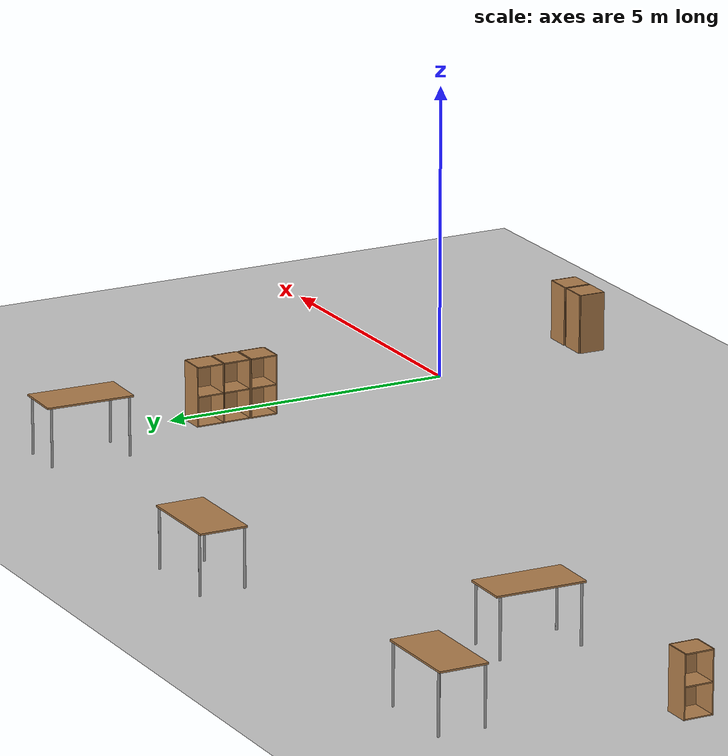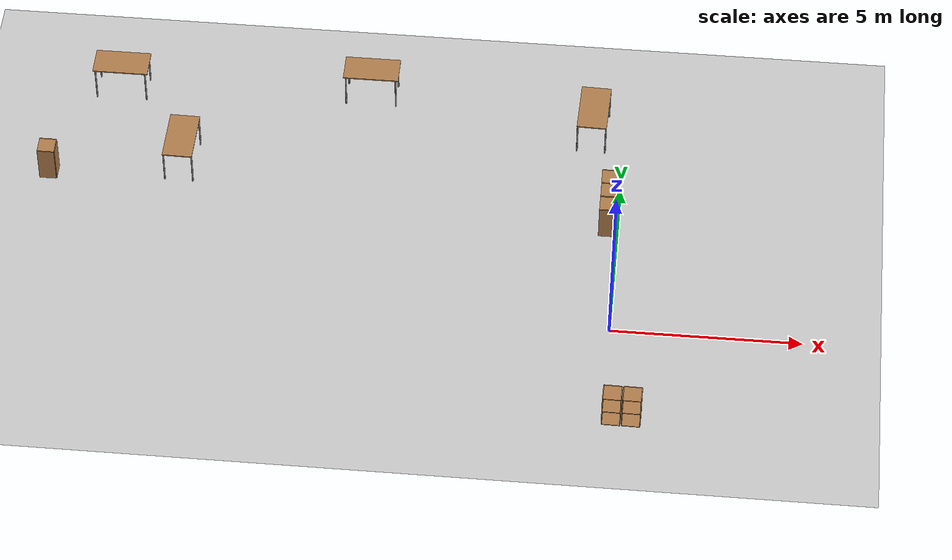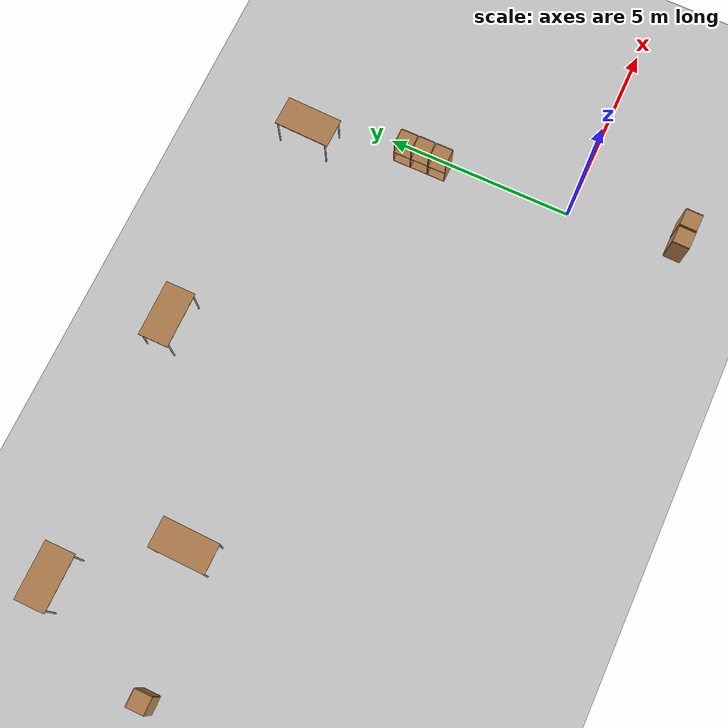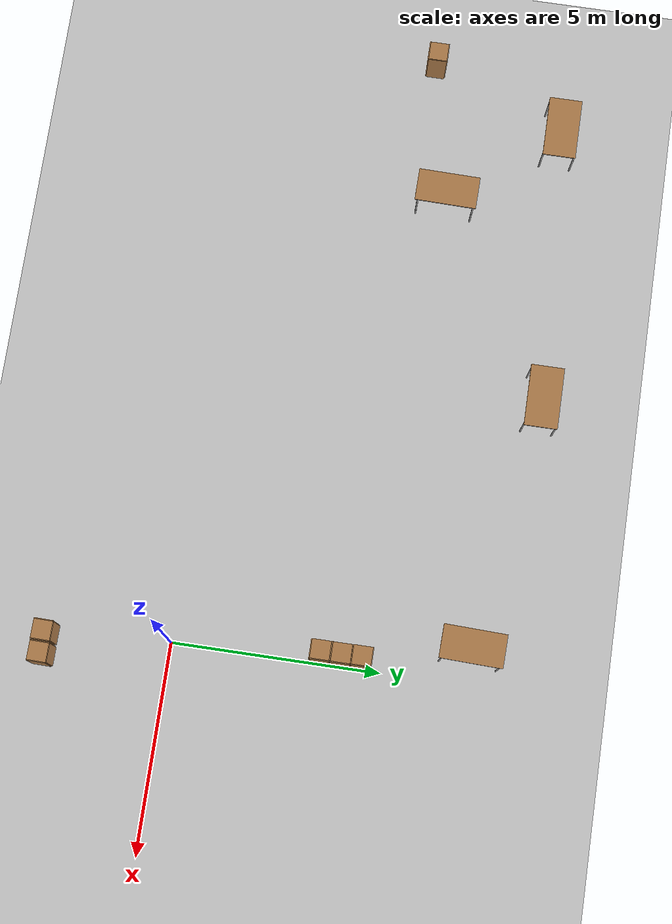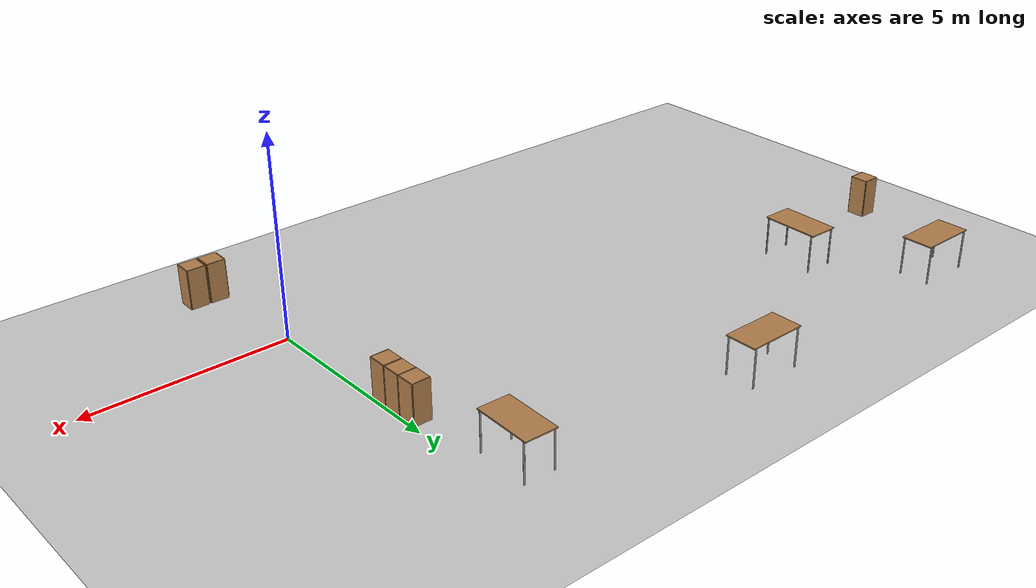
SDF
<sdf version="1.6">
 <world name="default">
  <model name="ground_plane">
   <static>1</static>
   <link name="link">
    <collision name="collision">
     <geometry><plane><normal>0 0 1</normal><size>100 100</size></plane></geometry>
     <surface><friction><ode><mu>100</mu><mu2>50</mu2></ode></friction></surface>
    </collision>
    <visual name="visual">
     <cast_shadows>0</cast_shadows>
     <geometry><plane><normal>0 0 1</normal><size>100 100</size></plane></geometry>
     <material>
      <script><uri>file://media/materials/scripts/gazebo.material</uri><name>Gazebo/Grey</name></script>
     </material>
    </visual>
   </link>
  </model>
  <model name="table_2">
   <static>1</static>
   <link name="link">
    <collision name="surface">
     <pose>0 0 1 0 -0 0</pose>
     <geometry><box><size>1.5 0.8 0.03</size></box></geometry>
     <surface><friction><ode><mu>0.6</mu><mu2>0.6</mu2></ode></friction></surface>
    </collision>
    <visual name="visual1">
     <pose>0 0 1 0 -0 0</pose>
     <geometry><box><size>1.5 0.8 0.03</size></box></geometry>
     <material>
      <script><uri>file://media/materials/scripts/gazebo.material</uri><name>Gazebo/Wood</name></script>
     </material>
    </visual>
    <collision name="front_left_leg">
     <pose>0.68 0.38 0.5 0 -0 0</pose>
     <geometry><cylinder><radius>0.02</radius><length>1</length></cylinder></geometry>
    </collision>
    <visual name="front_left_leg">
     <pose>0.68 0.38 0.5 0 -0 0</pose>
     <geometry><cylinder><radius>0.02</radius><length>1</length></cylinder></geometry>
     <material>
      <script><uri>file://media/materials/scripts/gazebo.material</uri><name>Gazebo/Grey</name></script>
     </material>
    </visual>
    <collision name="front_right_leg">
     <pose>0.68 -0.38 0.5 0 -0 0</pose>
     <geometry><cylinder><radius>0.02</radius><length>1</length></cylinder></geometry>
    </collision>
    <visual name="front_right_leg">
     <pose>0.68 -0.38 0.5 0 -0 0</pose>
     <geometry><cylinder><radius>0.02</radius><length>1</length></cylinder></geometry>
     <material>
      <script><uri>file://media/materials/scripts/gazebo.material</uri><name>Gazebo/Grey</name></script>
     </material>
    </visual>
    <collision name="back_right_leg">
     <pose>-0.68 -0.38 0.5 0 -0 0</pose>
     <geometry><cylinder><radius>0.02</radius><length>1</length></cylinder></geometry>
    </collision>
    <visual name="back_right_leg">
     <pose>-0.68 -0.38 0.5 0 -0 0</pose>
     <geometry><cylinder><radius>0.02</radius><length>1</length></cylinder></geometry>
     <material>
      <script><uri>file://media/materials/scripts/gazebo.material</uri><name>Gazebo/Grey</name></script>
     </material>
    </visual>
    <collision name="back_left_leg">
     <pose>-0.68 0.38 0.5 0 -0 0</pose>
     <geometry><cylinder><radius>0.02</radius><length>1</length></cylinder></geometry>
    </collision>
    <visual name="back_left_leg">
     <pose>-0.68 0.38 0.5 0 -0 0</pose>
     <geometry><cylinder><radius>0.02</radius><length>1</length></cylinder></geometry>
     <material>
      <script><uri>file://media/materials/scripts/gazebo.material</uri><name>Gazebo/Grey</name></script>
     </material>
    </visual>
   </link>
   <pose>-13.7953 7.55422 0 0 -0 0</pose>
  </model>
  <model name="table_3">
   <static>1</static>
   <link name="link">
    <collision name="surface">
     <pose>0 0 1 0 -0 0</pose>
     <geometry><box><size>1.5 0.8 0.03</size></box></geometry>
     <surface><friction><ode><mu>0.6</mu><mu2>0.6</mu2></ode></friction></surface>
    </collision>
    <visual name="visual1">
     <pose>0 0 1 0 -0 0</pose>
     <geometry><box><size>1.5 0.8 0.03</size></box></geometry>
     <material>
      <script><uri>file://media/materials/scripts/gazebo.material</uri><name>Gazebo/Wood</name></script>
     </material>
    </visual>
    <collision name="front_left_leg">
     <pose>0.68 0.38 0.5 0 -0 0</pose>
     <geometry><cylinder><radius>0.02</radius><length>1</length></cylinder></geometry>
    </collision>
    <visual name="front_left_leg">
     <pose>0.68 0.38 0.5 0 -0 0</pose>
     <geometry><cylinder><radius>0.02</radius><length>1</length></cylinder></geometry>
     <material>
      <script><uri>file://media/materials/scripts/gazebo.material</uri><name>Gazebo/Grey</name></script>
     </material>
    </visual>
    <collision name="front_right_leg">
     <pose>0.68 -0.38 0.5 0 -0 0</pose>
     <geometry><cylinder><radius>0.02</radius><length>1</length></cylinder></geometry>
    </collision>
    <visual name="front_right_leg">
     <pose>0.68 -0.38 0.5 0 -0 0</pose>
     <geometry><cylinder><radius>0.02</radius><length>1</length></cylinder></geometry>
     <material>
      <script><uri>file://media/materials/scripts/gazebo.material</uri><name>Gazebo/Grey</name></script>
     </material>
    </visual>
    <collision name="back_right_leg">
     <pose>-0.68 -0.38 0.5 0 -0 0</pose>
     <geometry><cylinder><radius>0.02</radius><length>1</length></cylinder></geometry>
    </collision>
    <visual name="back_right_leg">
     <pose>-0.68 -0.38 0.5 0 -0 0</pose>
     <geometry><cylinder><radius>0.02</radius><length>1</length></cylinder></geometry>
     <material>
      <script><uri>file://media/materials/scripts/gazebo.material</uri><name>Gazebo/Grey</name></script>
     </material>
    </visual>
    <collision name="back_left_leg">
     <pose>-0.68 0.38 0.5 0 -0 0</pose>
     <geometry><cylinder><radius>0.02</radius><length>1</length></cylinder></geometry>
    </collision>
    <visual name="back_left_leg">
     <pose>-0.68 0.38 0.5 0 -0 0</pose>
     <geometry><cylinder><radius>0.02</radius><length>1</length></cylinder></geometry>
     <material>
      <script><uri>file://media/materials/scripts/gazebo.material</uri><name>Gazebo/Grey</name></script>
     </material>
    </visual>
   </link>
   <pose>-11.8155 4.96432 0 0 0 -1.58959</pose>
  </model>
  <model name="table_4">
   <static>1</static>
   <link name="link">
    <collision name="surface">
     <pose>0 0 1 0 -0 0</pose>
     <geometry><box><size>1.5 0.8 0.03</size></box></geometry>
     <surface><friction><ode><mu>0.6</mu><mu2>0.6</mu2></ode></friction></surface>
    </collision>
    <visual name="visual1">
     <pose>0 0 1 0 -0 0</pose>
     <geometry><box><size>1.5 0.8 0.03</size></box></geometry>
     <material>
      <script><uri>file://media/materials/scripts/gazebo.material</uri><name>Gazebo/Wood</name></script>
     </material>
    </visual>
    <collision name="front_left_leg">
     <pose>0.68 0.38 0.5 0 -0 0</pose>
     <geometry><cylinder><radius>0.02</radius><length>1</length></cylinder></geometry>
    </collision>
    <visual name="front_left_leg">
     <pose>0.68 0.38 0.5 0 -0 0</pose>
     <geometry><cylinder><radius>0.02</radius><length>1</length></cylinder></geometry>
     <material>
      <script><uri>file://media/materials/scripts/gazebo.material</uri><name>Gazebo/Grey</name></script>
     </material>
    </visual>
    <collision name="front_right_leg">
     <pose>0.68 -0.38 0.5 0 -0 0</pose>
     <geometry><cylinder><radius>0.02</radius><length>1</length></cylinder></geometry>
    </collision>
    <visual name="front_right_leg">
     <pose>0.68 -0.38 0.5 0 -0 0</pose>
     <geometry><cylinder><radius>0.02</radius><length>1</length></cylinder></geometry>
     <material>
      <script><uri>file://media/materials/scripts/gazebo.material</uri><name>Gazebo/Grey</name></script>
     </material>
    </visual>
    <collision name="back_right_leg">
     <pose>-0.68 -0.38 0.5 0 -0 0</pose>
     <geometry><cylinder><radius>0.02</radius><length>1</length></cylinder></geometry>
    </collision>
    <visual name="back_right_leg">
     <pose>-0.68 -0.38 0.5 0 -0 0</pose>
     <geometry><cylinder><radius>0.02</radius><length>1</length></cylinder></geometry>
     <material>
      <script><uri>file://media/materials/scripts/gazebo.material</uri><name>Gazebo/Grey</name></script>
     </material>
    </visual>
    <collision name="back_left_leg">
     <pose>-0.68 0.38 0.5 0 -0 0</pose>
     <geometry><cylinder><radius>0.02</radius><length>1</length></cylinder></geometry>
    </collision>
    <visual name="back_left_leg">
     <pose>-0.68 0.38 0.5 0 -0 0</pose>
     <geometry><cylinder><radius>0.02</radius><length>1</length></cylinder></geometry>
     <material>
      <script><uri>file://media/materials/scripts/gazebo.material</uri><name>Gazebo/Grey</name></script>
     </material>
    </visual>
   </link>
   <pose>-6.97521 7.92094 0 0 -0 0</pose>
  </model>
  <model name="table_5">
   <static>1</static>
   <link name="link">
    <collision name="surface">
     <pose>0 0 1 0 -0 0</pose>
     <geometry><box><size>1.5 0.8 0.03</size></box></geometry>
     <surface><friction><ode><mu>0.6</mu><mu2>0.6</mu2></ode></friction></surface>
    </collision>
    <visual name="visual1">
     <pose>0 0 1 0 -0 0</pose>
     <geometry><box><size>1.5 0.8 0.03</size></box></geometry>
     <material>
      <script><uri>file://media/materials/scripts/gazebo.material</uri><name>Gazebo/Wood</name></script>
     </material>
    </visual>
    <collision name="front_left_leg">
     <pose>0.68 0.38 0.5 0 -0 0</pose>
     <geometry><cylinder><radius>0.02</radius><length>1</length></cylinder></geometry>
    </collision>
    <visual name="front_left_leg">
     <pose>0.68 0.38 0.5 0 -0 0</pose>
     <geometry><cylinder><radius>0.02</radius><length>1</length></cylinder></geometry>
     <material>
      <script><uri>file://media/materials/scripts/gazebo.material</uri><name>Gazebo/Grey</name></script>
     </material>
    </visual>
    <collision name="front_right_leg">
     <pose>0.68 -0.38 0.5 0 -0 0</pose>
     <geometry><cylinder><radius>0.02</radius><length>1</length></cylinder></geometry>
    </collision>
    <visual name="front_right_leg">
     <pose>0.68 -0.38 0.5 0 -0 0</pose>
     <geometry><cylinder><radius>0.02</radius><length>1</length></cylinder></geometry>
     <material>
      <script><uri>file://media/materials/scripts/gazebo.material</uri><name>Gazebo/Grey</name></script>
     </material>
    </visual>
    <collision name="back_right_leg">
     <pose>-0.68 -0.38 0.5 0 -0 0</pose>
     <geometry><cylinder><radius>0.02</radius><length>1</length></cylinder></geometry>
    </collision>
    <visual name="back_right_leg">
     <pose>-0.68 -0.38 0.5 0 -0 0</pose>
     <geometry><cylinder><radius>0.02</radius><length>1</length></cylinder></geometry>
     <material>
      <script><uri>file://media/materials/scripts/gazebo.material</uri><name>Gazebo/Grey</name></script>
     </material>
    </visual>
    <collision name="back_left_leg">
     <pose>-0.68 0.38 0.5 0 -0 0</pose>
     <geometry><cylinder><radius>0.02</radius><length>1</length></cylinder></geometry>
    </collision>
    <visual name="back_left_leg">
     <pose>-0.68 0.38 0.5 0 -0 0</pose>
     <geometry><cylinder><radius>0.02</radius><length>1</length></cylinder></geometry>
     <material>
      <script><uri>file://media/materials/scripts/gazebo.material</uri><name>Gazebo/Grey</name></script>
     </material>
    </visual>
   </link>
   <pose>-0.858199 7.00893 0 0 -0 1.54059</pose>
  </model>
  <model name="cabinet_1">
   <static>1</static>
   <link name="cabinet_bottom_plate">
    <inertial>
     <pose>0 0 -1 0 -0 0</pose>
     <inertia><ixx>2.05</ixx><ixy>0</ixy><ixz>0</ixz><iyy>2.05</iyy><iyz>0</iyz><izz>2.05</izz></inertia>
     <mass>25</mass>
    </inertial>
    <collision name="cabinet_bottom_plate_geom">
     <pose>0 0 0.01 0 -0 0</pose>
     <geometry><box><size>0.45 0.45 0.02</size></box></geometry>
    </collision>
    <visual name="cabinet_bottom_plate_geom_visual">
     <pose>0 0 0.01 0 -0 0</pose>
     <geometry><box><size>0.45 0.45 0.02</size></box></geometry>
     <material>
      <script><uri>file://media/materials/scripts/gazebo.material</uri><name>Gazebo/Wood</name></script>
     </material>
    </visual>
    <collision name="cabinet_bottom_plate_geom_cabinet_back_plate">
     <pose>0.235 0 0.51 0 -0 0</pose>
     <geometry><box><size>0.02 0.45 1.02</size></box></geometry>
    </collision>
    <visual name="cabinet_bottom_plate_geom_cabinet_back_plate_visual">
     <pose>0.235 0 0.51 0 -0 0</pose>
     <geometry><box><size>0.02 0.45 1.02</size></box></geometry>
     <material>
      <script><uri>file://media/materials/scripts/gazebo.material</uri><name>Gazebo/Wood</name></script>
     </material>
    </visual>
    <collision name="cabinet_bottom_plate_geom_cabinet_left_plate">
     <pose>0 0.235 0.51 0 -0 0</pose>
     <geometry><box><size>0.45 0.02 1.02</size></box></geometry>
    </collision>
    <visual name="cabinet_bottom_plate_geom_cabinet_left_plate_visual">
     <pose>0 0.235 0.51 0 -0 0</pose>
     <geometry><box><size>0.45 0.02 1.02</size></box></geometry>
     <material>
      <script><uri>file://media/materials/scripts/gazebo.material</uri><name>Gazebo/Wood</name></script>
     </material>
    </visual>
    <collision name="cabinet_bottom_plate_geom_cabinet_middle_plate">
     <pose>0 0 0.51 0 -0 0</pose>
     <geometry><box><size>0.45 0.45 0.02</size></box></geometry>
    </collision>
    <visual name="cabinet_bottom_plate_geom_cabinet_middle_plate_visual">
     <pose>0 0 0.51 0 -0 0</pose>
     <geometry><box><size>0.45 0.45 0.02</size></box></geometry>
     <material>
      <script><uri>file://media/materials/scripts/gazebo.material</uri><name>Gazebo/Wood</name></script>
     </material>
    </visual>
    <collision name="cabinet_bottom_plate_geom_cabinet_right_plate">
     <pose>0 -0.235 0.51 0 -0 0</pose>
     <geometry><box><size>0.45 0.02 1.02</size></box></geometry>
    </collision>
    <visual name="cabinet_bottom_plate_geom_cabinet_right_plate_visual">
     <pose>0 -0.235 0.51 0 -0 0</pose>
     <geometry><box><size>0.45 0.02 1.02</size></box></geometry>
     <material>
      <script><uri>file://media/materials/scripts/gazebo.material</uri><name>Gazebo/Wood</name></script>
     </material>
    </visual>
    <collision name="cabinet_bottom_plate_geom_cabinet_top_plate">
     <pose>0 0 1.01 0 -0 0</pose>
     <geometry><box><size>0.45 0.45 0.02</size></box></geometry>
    </collision>
    <visual name="cabinet_bottom_plate_geom_cabinet_top_plate_visual">
     <pose>0 0 1.01 0 -0 0</pose>
     <geometry><box><size>0.45 0.45 0.02</size></box></geometry>
     <material>
      <script><uri>file://media/materials/scripts/gazebo.material</uri><name>Gazebo/Wood</name></script>
     </material>
    </visual>
   </link>
   <pose>-15.3442 4.28293 0 0 -0 0</pose>
  </model>
  <model name="cabinet_0_clone">
   <static>1</static>
   <link name="cabinet_bottom_plate">
    <inertial>
     <pose>0 0 -1 0 -0 0</pose>
     <inertia><ixx>2.05</ixx><ixy>0</ixy><ixz>0</ixz><iyy>2.05</iyy><iyz>0</iyz><izz>2.05</izz></inertia>
     <mass>25</mass>
    </inertial>
    <collision name="cabinet_bottom_plate_geom">
     <pose>0 0 0.01 0 -0 0</pose>
     <geometry><box><size>0.45 0.45 0.02</size></box></geometry>
    </collision>
    <visual name="cabinet_bottom_plate_geom_visual">
     <pose>0 0 0.01 0 -0 0</pose>
     <geometry><box><size>0.45 0.45 0.02</size></box></geometry>
     <material>
      <script><uri>file://media/materials/scripts/gazebo.material</uri><name>Gazebo/Wood</name></script>
     </material>
    </visual>
    <collision name="cabinet_bottom_plate_geom_cabinet_back_plate">
     <pose>0.235 0 0.51 0 -0 0</pose>
     <geometry><box><size>0.02 0.45 1.02</size></box></geometry>
    </collision>
    <visual name="cabinet_bottom_plate_geom_cabinet_back_plate_visual">
     <pose>0.235 0 0.51 0 -0 0</pose>
     <geometry><box><size>0.02 0.45 1.02</size></box></geometry>
     <material>
      <script><uri>file://media/materials/scripts/gazebo.material</uri><name>Gazebo/Wood</name></script>
     </material>
    </visual>
    <collision name="cabinet_bottom_plate_geom_cabinet_left_plate">
     <pose>0 0.235 0.51 0 -0 0</pose>
     <geometry><box><size>0.45 0.02 1.02</size></box></geometry>
    </collision>
    <visual name="cabinet_bottom_plate_geom_cabinet_left_plate_visual">
     <pose>0 0.235 0.51 0 -0 0</pose>
     <geometry><box><size>0.45 0.02 1.02</size></box></geometry>
     <material>
      <script><uri>file://media/materials/scripts/gazebo.material</uri><name>Gazebo/Wood</name></script>
     </material>
    </visual>
    <collision name="cabinet_bottom_plate_geom_cabinet_middle_plate">
     <pose>0 0 0.51 0 -0 0</pose>
     <geometry><box><size>0.45 0.45 0.02</size></box></geometry>
    </collision>
    <visual name="cabinet_bottom_plate_geom_cabinet_middle_plate_visual">
     <pose>0 0 0.51 0 -0 0</pose>
     <geometry><box><size>0.45 0.45 0.02</size></box></geometry>
     <material>
      <script><uri>file://media/materials/scripts/gazebo.material</uri><name>Gazebo/Wood</name></script>
     </material>
    </visual>
    <collision name="cabinet_bottom_plate_geom_cabinet_right_plate">
     <pose>0 -0.235 0.51 0 -0 0</pose>
     <geometry><box><size>0.45 0.02 1.02</size></box></geometry>
    </collision>
    <visual name="cabinet_bottom_plate_geom_cabinet_right_plate_visual">
     <pose>0 -0.235 0.51 0 -0 0</pose>
     <geometry><box><size>0.45 0.02 1.02</size></box></geometry>
     <material>
      <script><uri>file://media/materials/scripts/gazebo.material</uri><name>Gazebo/Wood</name></script>
     </material>
    </visual>
    <collision name="cabinet_bottom_plate_geom_cabinet_top_plate">
     <pose>0 0 1.01 0 -0 0</pose>
     <geometry><box><size>0.45 0.45 0.02</size></box></geometry>
    </collision>
    <visual name="cabinet_bottom_plate_geom_cabinet_top_plate_visual">
     <pose>0 0 1.01 0 -0 0</pose>
     <geometry><box><size>0.45 0.45 0.02</size></box></geometry>
     <material>
      <script><uri>file://media/materials/scripts/gazebo.material</uri><name>Gazebo/Wood</name></script>
     </material>
    </visual>
   </link>
   <pose>-0.271726 4.50173 0 0 -0 0</pose>
  </model>
  <model name="cabinet_0_clone_0">
   <static>1</static>
   <link name="cabinet_bottom_plate">
    <inertial>
     <pose>0 0 -1 0 -0 0</pose>
     <inertia><ixx>2.05</ixx><ixy>0</ixy><ixz>0</ixz><iyy>2.05</iyy><iyz>0</iyz><izz>2.05</izz></inertia>
     <mass>25</mass>
    </inertial>
    <collision name="cabinet_bottom_plate_geom">
     <pose>0 0 0.01 0 -0 0</pose>
     <geometry><box><size>0.45 0.45 0.02</size></box></geometry>
    </collision>
    <visual name="cabinet_bottom_plate_geom_visual">
     <pose>0 0 0.01 0 -0 0</pose>
     <geometry><box><size>0.45 0.45 0.02</size></box></geometry>
     <material>
      <script><uri>file://media/materials/scripts/gazebo.material</uri><name>Gazebo/Wood</name></script>
     </material>
    </visual>
    <collision name="cabinet_bottom_plate_geom_cabinet_back_plate">
     <pose>0.235 0 0.51 0 -0 0</pose>
     <geometry><box><size>0.02 0.45 1.02</size></box></geometry>
    </collision>
    <visual name="cabinet_bottom_plate_geom_cabinet_back_plate_visual">
     <pose>0.235 0 0.51 0 -0 0</pose>
     <geometry><box><size>0.02 0.45 1.02</size></box></geometry>
     <material>
      <script><uri>file://media/materials/scripts/gazebo.material</uri><name>Gazebo/Wood</name></script>
     </material>
    </visual>
    <collision name="cabinet_bottom_plate_geom_cabinet_left_plate">
     <pose>0 0.235 0.51 0 -0 0</pose>
     <geometry><box><size>0.45 0.02 1.02</size></box></geometry>
    </collision>
    <visual name="cabinet_bottom_plate_geom_cabinet_left_plate_visual">
     <pose>0 0.235 0.51 0 -0 0</pose>
     <geometry><box><size>0.45 0.02 1.02</size></box></geometry>
     <material>
      <script><uri>file://media/materials/scripts/gazebo.material</uri><name>Gazebo/Wood</name></script>
     </material>
    </visual>
    <collision name="cabinet_bottom_plate_geom_cabinet_middle_plate">
     <pose>0 0 0.51 0 -0 0</pose>
     <geometry><box><size>0.45 0.45 0.02</size></box></geometry>
    </collision>
    <visual name="cabinet_bottom_plate_geom_cabinet_middle_plate_visual">
     <pose>0 0 0.51 0 -0 0</pose>
     <geometry><box><size>0.45 0.45 0.02</size></box></geometry>
     <material>
      <script><uri>file://media/materials/scripts/gazebo.material</uri><name>Gazebo/Wood</name></script>
     </material>
    </visual>
    <collision name="cabinet_bottom_plate_geom_cabinet_right_plate">
     <pose>0 -0.235 0.51 0 -0 0</pose>
     <geometry><box><size>0.45 0.02 1.02</size></box></geometry>
    </collision>
    <visual name="cabinet_bottom_plate_geom_cabinet_right_plate_visual">
     <pose>0 -0.235 0.51 0 -0 0</pose>
     <geometry><box><size>0.45 0.02 1.02</size></box></geometry>
     <material>
      <script><uri>file://media/materials/scripts/gazebo.material</uri><name>Gazebo/Wood</name></script>
     </material>
    </visual>
    <collision name="cabinet_bottom_plate_geom_cabinet_top_plate">
     <pose>0 0 1.01 0 -0 0</pose>
     <geometry><box><size>0.45 0.45 0.02</size></box></geometry>
    </collision>
    <visual name="cabinet_bottom_plate_geom_cabinet_top_plate_visual">
     <pose>0 0 1.01 0 -0 0</pose>
     <geometry><box><size>0.45 0.45 0.02</size></box></geometry>
     <material>
      <script><uri>file://media/materials/scripts/gazebo.material</uri><name>Gazebo/Wood</name></script>
     </material>
    </visual>
   </link>
   <pose>-0.266461 4.02067 0 0 -0 0</pose>
  </model>
  <model name="cabinet_0_clone_1">
   <static>1</static>
   <link name="cabinet_bottom_plate">
    <inertial>
     <pose>0 0 -1 0 -0 0</pose>
     <inertia><ixx>2.05</ixx><ixy>0</ixy><ixz>0</ixz><iyy>2.05</iyy><iyz>0</iyz><izz>2.05</izz></inertia>
     <mass>25</mass>
    </inertial>
    <collision name="cabinet_bottom_plate_geom">
     <pose>0 0 0.01 0 -0 0</pose>
     <geometry><box><size>0.45 0.45 0.02</size></box></geometry>
    </collision>
    <visual name="cabinet_bottom_plate_geom_visual">
     <pose>0 0 0.01 0 -0 0</pose>
     <geometry><box><size>0.45 0.45 0.02</size></box></geometry>
     <material>
      <script><uri>file://media/materials/scripts/gazebo.material</uri><name>Gazebo/Wood</name></script>
     </material>
    </visual>
    <collision name="cabinet_bottom_plate_geom_cabinet_back_plate">
     <pose>0.235 0 0.51 0 -0 0</pose>
     <geometry><box><size>0.02 0.45 1.02</size></box></geometry>
    </collision>
    <visual name="cabinet_bottom_plate_geom_cabinet_back_plate_visual">
     <pose>0.235 0 0.51 0 -0 0</pose>
     <geometry><box><size>0.02 0.45 1.02</size></box></geometry>
     <material>
      <script><uri>file://media/materials/scripts/gazebo.material</uri><name>Gazebo/Wood</name></script>
     </material>
    </visual>
    <collision name="cabinet_bottom_plate_geom_cabinet_left_plate">
     <pose>0 0.235 0.51 0 -0 0</pose>
     <geometry><box><size>0.45 0.02 1.02</size></box></geometry>
    </collision>
    <visual name="cabinet_bottom_plate_geom_cabinet_left_plate_visual">
     <pose>0 0.235 0.51 0 -0 0</pose>
     <geometry><box><size>0.45 0.02 1.02</size></box></geometry>
     <material>
      <script><uri>file://media/materials/scripts/gazebo.material</uri><name>Gazebo/Wood</name></script>
     </material>
    </visual>
    <collision name="cabinet_bottom_plate_geom_cabinet_middle_plate">
     <pose>0 0 0.51 0 -0 0</pose>
     <geometry><box><size>0.45 0.45 0.02</size></box></geometry>
    </collision>
    <visual name="cabinet_bottom_plate_geom_cabinet_middle_plate_visual">
     <pose>0 0 0.51 0 -0 0</pose>
     <geometry><box><size>0.45 0.45 0.02</size></box></geometry>
     <material>
      <script><uri>file://media/materials/scripts/gazebo.material</uri><name>Gazebo/Wood</name></script>
     </material>
    </visual>
    <collision name="cabinet_bottom_plate_geom_cabinet_right_plate">
     <pose>0 -0.235 0.51 0 -0 0</pose>
     <geometry><box><size>0.45 0.02 1.02</size></box></geometry>
    </collision>
    <visual name="cabinet_bottom_plate_geom_cabinet_right_plate_visual">
     <pose>0 -0.235 0.51 0 -0 0</pose>
     <geometry><box><size>0.45 0.02 1.02</size></box></geometry>
     <material>
      <script><uri>file://media/materials/scripts/gazebo.material</uri><name>Gazebo/Wood</name></script>
     </material>
    </visual>
    <collision name="cabinet_bottom_plate_geom_cabinet_top_plate">
     <pose>0 0 1.01 0 -0 0</pose>
     <geometry><box><size>0.45 0.45 0.02</size></box></geometry>
    </collision>
    <visual name="cabinet_bottom_plate_geom_cabinet_top_plate_visual">
     <pose>0 0 1.01 0 -0 0</pose>
     <geometry><box><size>0.45 0.45 0.02</size></box></geometry>
     <material>
      <script><uri>file://media/materials/scripts/gazebo.material</uri><name>Gazebo/Wood</name></script>
     </material>
    </visual>
   </link>
   <pose>-0.26798 3.53031 0 0 -0 0</pose>
  </model>
  <model name="cabinet_clone">
   <static>1</static>
   <link name="cabinet_bottom_plate">
    <inertial>
     <pose>0 0 -1 0 -0 0</pose>
     <inertia><ixx>2.05</ixx><ixy>0</ixy><ixz>0</ixz><iyy>2.05</iyy><iyz>0</iyz><izz>2.05</izz></inertia>
     <mass>25</mass>
    </inertial>
    <collision name="cabinet_bottom_plate_geom">
     <pose>0 0 0.01 0 -0 0</pose>
     <geometry><box><size>0.45 0.45 0.02</size></box></geometry>
    </collision>
    <visual name="cabinet_bottom_plate_geom_visual">
     <pose>0 0 0.01 0 -0 0</pose>
     <geometry><box><size>0.45 0.45 0.02</size></box></geometry>
     <material>
      <script><uri>file://media/materials/scripts/gazebo.material</uri><name>Gazebo/Wood</name></script>
     </material>
    </visual>
    <collision name="cabinet_bottom_plate_geom_cabinet_back_plate">
     <pose>0.235 0 0.51 0 -0 0</pose>
     <geometry><box><size>0.02 0.45 1.02</size></box></geometry>
    </collision>
    <visual name="cabinet_bottom_plate_geom_cabinet_back_plate_visual">
     <pose>0.235 0 0.51 0 -0 0</pose>
     <geometry><box><size>0.02 0.45 1.02</size></box></geometry>
     <material>
      <script><uri>file://media/materials/scripts/gazebo.material</uri><name>Gazebo/Wood</name></script>
     </material>
    </visual>
    <collision name="cabinet_bottom_plate_geom_cabinet_left_plate">
     <pose>0 0.235 0.51 0 -0 0</pose>
     <geometry><box><size>0.45 0.02 1.02</size></box></geometry>
    </collision>
    <visual name="cabinet_bottom_plate_geom_cabinet_left_plate_visual">
     <pose>0 0.235 0.51 0 -0 0</pose>
     <geometry><box><size>0.45 0.02 1.02</size></box></geometry>
     <material>
      <script><uri>file://media/materials/scripts/gazebo.material</uri><name>Gazebo/Wood</name></script>
     </material>
    </visual>
    <collision name="cabinet_bottom_plate_geom_cabinet_middle_plate">
     <pose>0 0 0.51 0 -0 0</pose>
     <geometry><box><size>0.45 0.45 0.02</size></box></geometry>
    </collision>
    <visual name="cabinet_bottom_plate_geom_cabinet_middle_plate_visual">
     <pose>0 0 0.51 0 -0 0</pose>
     <geometry><box><size>0.45 0.45 0.02</size></box></geometry>
     <material>
      <script><uri>file://media/materials/scripts/gazebo.material</uri><name>Gazebo/Wood</name></script>
     </material>
    </visual>
    <collision name="cabinet_bottom_plate_geom_cabinet_right_plate">
     <pose>0 -0.235 0.51 0 -0 0</pose>
     <geometry><box><size>0.45 0.02 1.02</size></box></geometry>
    </collision>
    <visual name="cabinet_bottom_plate_geom_cabinet_right_plate_visual">
     <pose>0 -0.235 0.51 0 -0 0</pose>
     <geometry><box><size>0.45 0.02 1.02</size></box></geometry>
     <material>
      <script><uri>file://media/materials/scripts/gazebo.material</uri><name>Gazebo/Wood</name></script>
     </material>
    </visual>
    <collision name="cabinet_bottom_plate_geom_cabinet_top_plate">
     <pose>0 0 1.01 0 -0 0</pose>
     <geometry><box><size>0.45 0.45 0.02</size></box></geometry>
    </collision>
    <visual name="cabinet_bottom_plate_geom_cabinet_top_plate_visual">
     <pose>0 0 1.01 0 -0 0</pose>
     <geometry><box><size>0.45 0.45 0.02</size></box></geometry>
     <material>
      <script><uri>file://media/materials/scripts/gazebo.material</uri><name>Gazebo/Wood</name></script>
     </material>
    </visual>
   </link>
   <pose>0.217488 -2.91063 0 0 -0 1.55423</pose>
  </model>
  <model name="cabinet_clone_0">
   <static>1</static>
   <link name="cabinet_bottom_plate">
    <inertial>
     <pose>0 0 -1 0 -0 0</pose>
     <inertia><ixx>2.05</ixx><ixy>0</ixy><ixz>0</ixz><iyy>2.05</iyy><iyz>0</iyz><izz>2.05</izz></inertia>
     <mass>25</mass>
    </inertial>
    <collision name="cabinet_bottom_plate_geom">
     <pose>0 0 0.01 0 -0 0</pose>
     <geometry><box><size>0.45 0.45 0.02</size></box></geometry>
    </collision>
    <visual name="cabinet_bottom_plate_geom_visual">
     <pose>0 0 0.01 0 -0 0</pose>
     <geometry><box><size>0.45 0.45 0.02</size></box></geometry>
     <material>
      <script><uri>file://media/materials/scripts/gazebo.material</uri><name>Gazebo/Wood</name></script>
     </material>
    </visual>
    <collision name="cabinet_bottom_plate_geom_cabinet_back_plate">
     <pose>0.235 0 0.51 0 -0 0</pose>
     <geometry><box><size>0.02 0.45 1.02</size></box></geometry>
    </collision>
    <visual name="cabinet_bottom_plate_geom_cabinet_back_plate_visual">
     <pose>0.235 0 0.51 0 -0 0</pose>
     <geometry><box><size>0.02 0.45 1.02</size></box></geometry>
     <material>
      <script><uri>file://media/materials/scripts/gazebo.material</uri><name>Gazebo/Wood</name></script>
     </material>
    </visual>
    <collision name="cabinet_bottom_plate_geom_cabinet_left_plate">
     <pose>0 0.235 0.51 0 -0 0</pose>
     <geometry><box><size>0.45 0.02 1.02</size></box></geometry>
    </collision>
    <visual name="cabinet_bottom_plate_geom_cabinet_left_plate_visual">
     <pose>0 0.235 0.51 0 -0 0</pose>
     <geometry><box><size>0.45 0.02 1.02</size></box></geometry>
     <material>
      <script><uri>file://media/materials/scripts/gazebo.material</uri><name>Gazebo/Wood</name></script>
     </material>
    </visual>
    <collision name="cabinet_bottom_plate_geom_cabinet_middle_plate">
     <pose>0 0 0.51 0 -0 0</pose>
     <geometry><box><size>0.45 0.45 0.02</size></box></geometry>
    </collision>
    <visual name="cabinet_bottom_plate_geom_cabinet_middle_plate_visual">
     <pose>0 0 0.51 0 -0 0</pose>
     <geometry><box><size>0.45 0.45 0.02</size></box></geometry>
     <material>
      <script><uri>file://media/materials/scripts/gazebo.material</uri><name>Gazebo/Wood</name></script>
     </material>
    </visual>
    <collision name="cabinet_bottom_plate_geom_cabinet_right_plate">
     <pose>0 -0.235 0.51 0 -0 0</pose>
     <geometry><box><size>0.45 0.02 1.02</size></box></geometry>
    </collision>
    <visual name="cabinet_bottom_plate_geom_cabinet_right_plate_visual">
     <pose>0 -0.235 0.51 0 -0 0</pose>
     <geometry><box><size>0.45 0.02 1.02</size></box></geometry>
     <material>
      <script><uri>file://media/materials/scripts/gazebo.material</uri><name>Gazebo/Wood</name></script>
     </material>
    </visual>
    <collision name="cabinet_bottom_plate_geom_cabinet_top_plate">
     <pose>0 0 1.01 0 -0 0</pose>
     <geometry><box><size>0.45 0.45 0.02</size></box></geometry>
    </collision>
    <visual name="cabinet_bottom_plate_geom_cabinet_top_plate_visual">
     <pose>0 0 1.01 0 -0 0</pose>
     <geometry><box><size>0.45 0.45 0.02</size></box></geometry>
     <material>
      <script><uri>file://media/materials/scripts/gazebo.material</uri><name>Gazebo/Wood</name></script>
     </material>
    </visual>
   </link>
   <pose>0.725157 -2.91168 0 0 -0 1.55423</pose>
  </model>
 </world>
</sdf>
